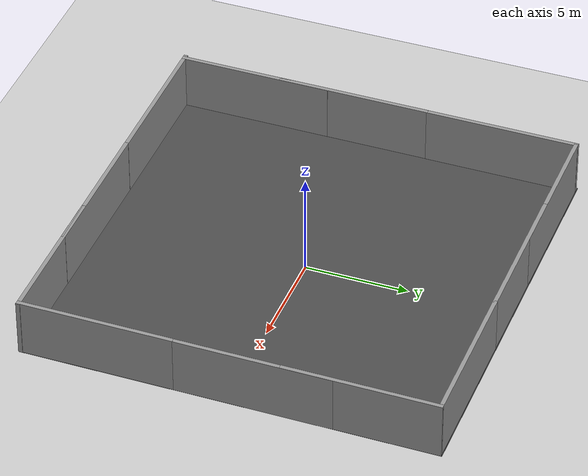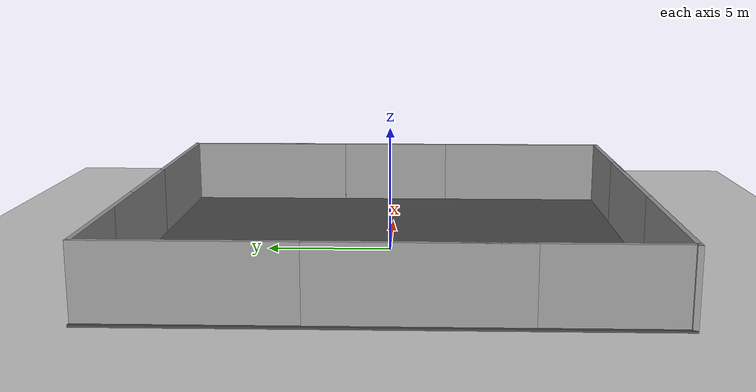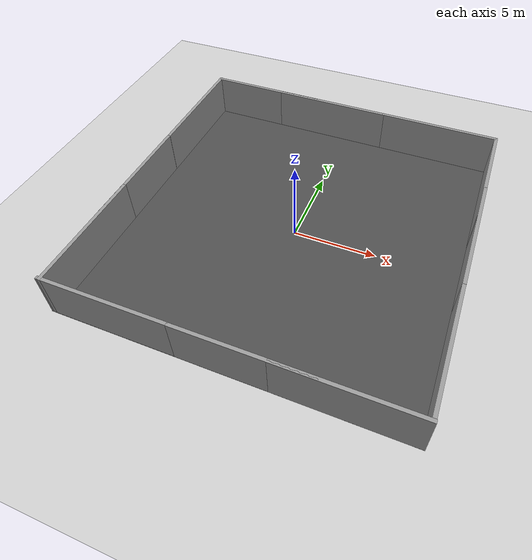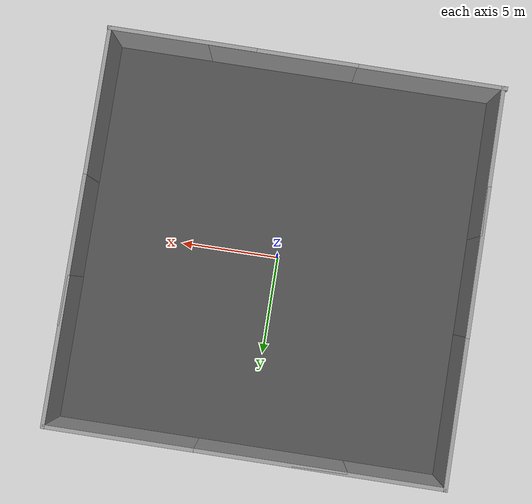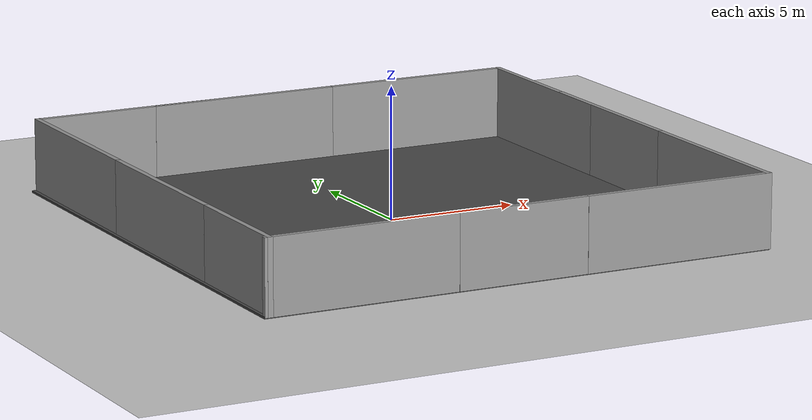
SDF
<sdf version="1.6">
 <world name="default">
  <light name="sun" type="directional">
   <pose>0 0 10 0 -0 0</pose>
   <diffuse>0.8 0.8 0.8 1</diffuse>
   <specular>0.2 0.2 0.2 1</specular>
   <attenuation>
    <range>1000</range>
    <constant>0.9</constant>
    <linear>0.01</linear>
    <quadratic>0.001</quadratic>
   </attenuation>
   <direction>-0.5 0.1 -0.9</direction>
  </light>
  <model name="ground_plane">
   <static>1</static>
   <link name="link">
    <collision name="collision">
     <geometry><plane><normal>0 0 1</normal><size>100 100</size></plane></geometry>
     <surface>
      <contact><collide_bitmask>65535</collide_bitmask></contact>
      <friction><ode><mu>100</mu><mu2>50</mu2></ode></friction>
     </surface>
    </collision>
    <visual name="visual">
     <cast_shadows>0</cast_shadows>
     <geometry><plane><normal>0 0 1</normal><size>100 100</size></plane></geometry>
     <material>
      <script><uri>file://media/materials/scripts/gazebo.material</uri><name>Gazebo/Grey</name></script>
     </material>
    </visual>
   </link>
  </model>
  <gravity>0 0 -9.8</gravity>
  <magnetic_field>6e-06 2.3e-05 -4.2e-05</magnetic_field>
  <atmosphere type="adiabatic"/>
  <physics name="default_physics" default="0" type="ode">
   <max_step_size>0.001</max_step_size>
   <real_time_factor>1</real_time_factor>
   <real_time_update_rate>1000</real_time_update_rate>
  </physics>
  <scene><ambient>0.4 0.4 0.4 1</ambient><background>0.7 0.7 0.7 1</background><shadows>1</shadows></scene>
  <audio><device>default</device></audio>
  <spherical_coordinates>
   <surface_model>EARTH_WGS84</surface_model>
   <latitude_deg>0</latitude_deg>
   <longitude_deg>0</longitude_deg>
   <elevation>0</elevation>
   <heading_deg>0</heading_deg>
  </spherical_coordinates>
  <model name="asphalt_plane">
   <static>1</static>
   <link name="link">
    <collision name="collision"><geometry><box><size>20 20 0.1</size></box></geometry></collision>
    <visual name="visual">
     <cast_shadows>0</cast_shadows>
     <geometry><box><size>20 20 0.1</size></box></geometry>
     <material>
      <script>
       <uri>model://asphalt_plane/materials/scripts</uri>
       <uri>model://asphalt_plane/materials/textures</uri>
       <name>vrc/asphalt</name>
      </script>
     </material>
    </visual>
   </link>
   <pose>0.016272 0.045969 0 0 -0 0</pose>
  </model>
  <model name="grey_wall">
   <static>1</static>
   <link name="link">
    <pose>0 0 1.4 0 -0 0</pose>
    <collision name="collision"><geometry><box><size>7.5 0.2 2.8</size></box></geometry></collision>
    <visual name="visual">
     <cast_shadows>0</cast_shadows>
     <geometry><box><size>7.5 0.2 2.8</size></box></geometry>
     <material>
      <script>
       <uri>model://grey_wall/materials/scripts</uri>
       <uri>model://grey_wall/materials/textures</uri>
       <name>vrc/grey_wall</name>
      </script>
     </material>
    </visual>
   </link>
   <pose>-6.21504 -9.85523 0 0 -0 0</pose>
  </model>
  <model name="grey_wall_clone">
   <static>1</static>
   <link name="link">
    <pose>0 0 1.4 0 -0 0</pose>
    <collision name="collision"><geometry><box><size>7.5 0.2 2.8</size></box></geometry></collision>
    <visual name="visual">
     <cast_shadows>0</cast_shadows>
     <geometry><box><size>7.5 0.2 2.8</size></box></geometry>
     <material>
      <script>
       <uri>model://grey_wall/materials/scripts</uri>
       <uri>model://grey_wall/materials/textures</uri>
       <name>vrc/grey_wall</name>
      </script>
     </material>
    </visual>
   </link>
   <pose>1.2139 -9.86051 0 0 -0 0</pose>
  </model>
  <model name="grey_wall_clone_0">
   <static>1</static>
   <link name="link">
    <pose>0 0 1.4 0 -0 0</pose>
    <collision name="collision"><geometry><box><size>7.5 0.2 2.8</size></box></geometry></collision>
    <visual name="visual">
     <cast_shadows>0</cast_shadows>
     <geometry><box><size>7.5 0.2 2.8</size></box></geometry>
     <material>
      <script>
       <uri>model://grey_wall/materials/scripts</uri>
       <uri>model://grey_wall/materials/textures</uri>
       <name>vrc/grey_wall</name>
      </script>
     </material>
    </visual>
   </link>
   <pose>6.29378 -9.86584 0 0 -0 0</pose>
  </model>
  <model name="grey_wall_clone_1">
   <static>1</static>
   <link name="link">
    <pose>0 0 1.4 0 -0 0</pose>
    <collision name="collision"><geometry><box><size>7.5 0.2 2.8</size></box></geometry></collision>
    <visual name="visual">
     <cast_shadows>0</cast_shadows>
     <geometry><box><size>7.5 0.2 2.8</size></box></geometry>
     <material>
      <script>
       <uri>model://grey_wall/materials/scripts</uri>
       <uri>model://grey_wall/materials/textures</uri>
       <name>vrc/grey_wall</name>
      </script>
     </material>
    </visual>
   </link>
   <pose>6.19179 9.92025 0 0 -0 0</pose>
  </model>
  <model name="grey_wall_clone_2">
   <static>1</static>
   <link name="link">
    <pose>0 0 1.4 0 -0 0</pose>
    <collision name="collision"><geometry><box><size>7.5 0.2 2.8</size></box></geometry></collision>
    <visual name="visual">
     <cast_shadows>0</cast_shadows>
     <geometry><box><size>7.5 0.2 2.8</size></box></geometry>
     <material>
      <script>
       <uri>model://grey_wall/materials/scripts</uri>
       <uri>model://grey_wall/materials/textures</uri>
       <name>vrc/grey_wall</name>
      </script>
     </material>
    </visual>
   </link>
   <pose>9.92065 -6.21524 0 0 0 -1.57184</pose>
  </model>
  <model name="grey_wall_clone_2_clone">
   <static>1</static>
   <link name="link">
    <pose>0 0 1.4 0 -0 0</pose>
    <collision name="collision"><geometry><box><size>7.5 0.2 2.8</size></box></geometry></collision>
    <visual name="visual">
     <cast_shadows>0</cast_shadows>
     <geometry><box><size>7.5 0.2 2.8</size></box></geometry>
     <material>
      <script>
       <uri>model://grey_wall/materials/scripts</uri>
       <uri>model://grey_wall/materials/textures</uri>
       <name>vrc/grey_wall</name>
      </script>
     </material>
    </visual>
   </link>
   <pose>9.93586 1.25461 0 0 0 -1.57184</pose>
  </model>
  <model name="grey_wall_clone_2_clone_0">
   <static>1</static>
   <link name="link">
    <pose>0 0 1.4 0 -0 0</pose>
    <collision name="collision"><geometry><box><size>7.5 0.2 2.8</size></box></geometry></collision>
    <visual name="visual">
     <cast_shadows>0</cast_shadows>
     <geometry><box><size>7.5 0.2 2.8</size></box></geometry>
     <material>
      <script>
       <uri>model://grey_wall/materials/scripts</uri>
       <uri>model://grey_wall/materials/textures</uri>
       <name>vrc/grey_wall</name>
      </script>
     </material>
    </visual>
   </link>
   <pose>9.92959 6.26735 0 0 0 -1.57184</pose>
  </model>
  <model name="grey_wall_clone_1_clone">
   <static>1</static>
   <link name="link">
    <pose>0 0 1.4 0 -0 0</pose>
    <collision name="collision"><geometry><box><size>7.5 0.2 2.8</size></box></geometry></collision>
    <visual name="visual">
     <cast_shadows>0</cast_shadows>
     <geometry><box><size>7.5 0.2 2.8</size></box></geometry>
     <material>
      <script>
       <uri>model://grey_wall/materials/scripts</uri>
       <uri>model://grey_wall/materials/textures</uri>
       <name>vrc/grey_wall</name>
      </script>
     </material>
    </visual>
   </link>
   <pose>-1.19569 9.91599 0 0 -0 0</pose>
  </model>
  <model name="grey_wall_clone_1_clone_0">
   <static>1</static>
   <link name="link">
    <pose>0 0 1.4 0 -0 0</pose>
    <collision name="collision"><geometry><box><size>7.5 0.2 2.8</size></box></geometry></collision>
    <visual name="visual">
     <cast_shadows>0</cast_shadows>
     <geometry><box><size>7.5 0.2 2.8</size></box></geometry>
     <material>
      <script>
       <uri>model://grey_wall/materials/scripts</uri>
       <uri>model://grey_wall/materials/textures</uri>
       <name>vrc/grey_wall</name>
      </script>
     </material>
    </visual>
   </link>
   <pose>-5.99604 9.91741 0 0 -0 0</pose>
  </model>
  <model name="grey_wall_clone_2_clone_1">
   <static>1</static>
   <link name="link">
    <pose>0 0 1.4 0 -0 0</pose>
    <collision name="collision"><geometry><box><size>7.5 0.2 2.8</size></box></geometry></collision>
    <visual name="visual">
     <cast_shadows>0</cast_shadows>
     <geometry><box><size>7.5 0.2 2.8</size></box></geometry>
     <material>
      <script>
       <uri>model://grey_wall/materials/scripts</uri>
       <uri>model://grey_wall/materials/textures</uri>
       <name>vrc/grey_wall</name>
      </script>
     </material>
    </visual>
   </link>
   <pose>-9.73404 6.27993 0 0 0 -1.57184</pose>
  </model>
  <model name="grey_wall_clone_2_clone_2">
   <static>1</static>
   <link name="link">
    <pose>0 0 1.4 0 -0 0</pose>
    <collision name="collision"><geometry><box><size>7.5 0.2 2.8</size></box></geometry></collision>
    <visual name="visual">
     <cast_shadows>0</cast_shadows>
     <geometry><box><size>7.5 0.2 2.8</size></box></geometry>
     <material>
      <script>
       <uri>model://grey_wall/materials/scripts</uri>
       <uri>model://grey_wall/materials/textures</uri>
       <name>vrc/grey_wall</name>
      </script>
     </material>
    </visual>
   </link>
   <pose>-9.74903 -1.16752 0 0 0 -1.57184</pose>
  </model>
  <model name="grey_wall_clone_2_clone_3">
   <static>1</static>
   <link name="link">
    <pose>0 0 1.4 0 -0 0</pose>
    <collision name="collision"><geometry><box><size>7.5 0.2 2.8</size></box></geometry></collision>
    <visual name="visual">
     <cast_shadows>0</cast_shadows>
     <geometry><box><size>7.5 0.2 2.8</size></box></geometry>
     <material>
      <script>
       <uri>model://grey_wall/materials/scripts</uri>
       <uri>model://grey_wall/materials/textures</uri>
       <name>vrc/grey_wall</name>
      </script>
     </material>
    </visual>
   </link>
   <pose>-9.74821 -6.20586 0 0 0 -1.57184</pose>
  </model>
 </world>
</sdf>
